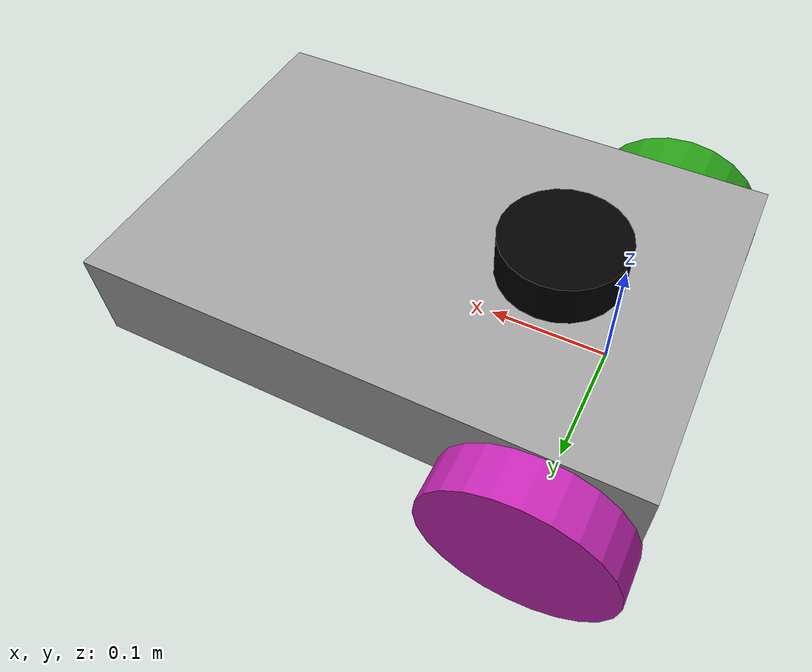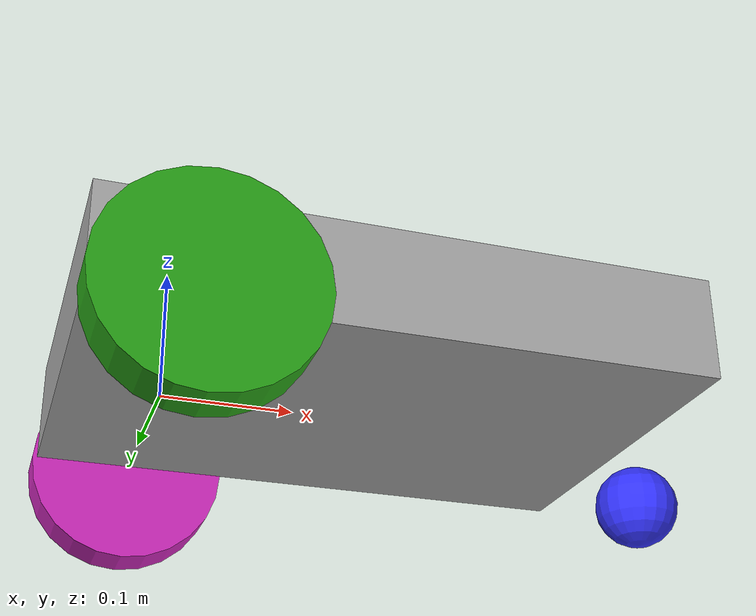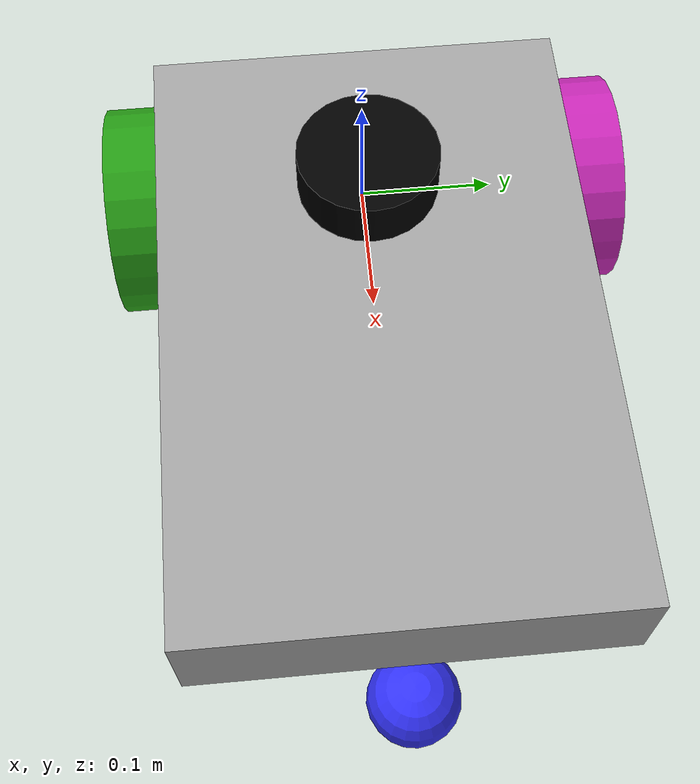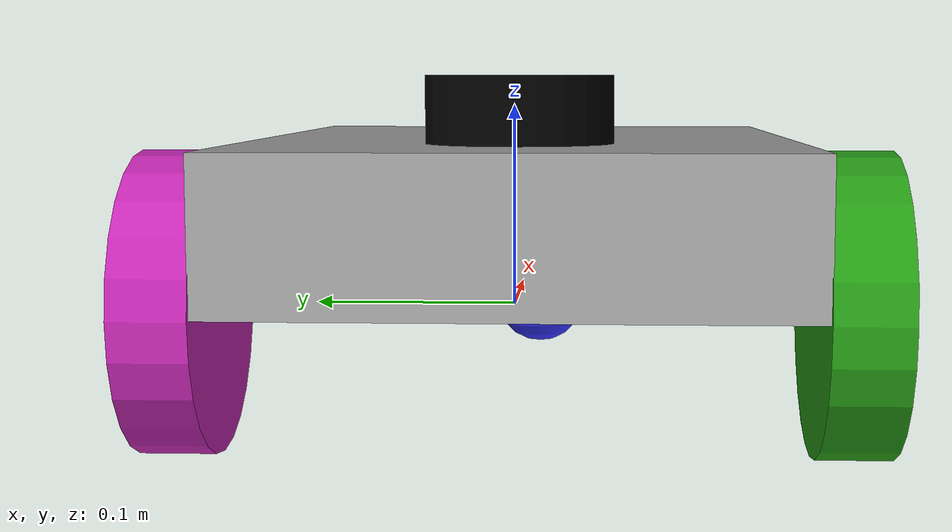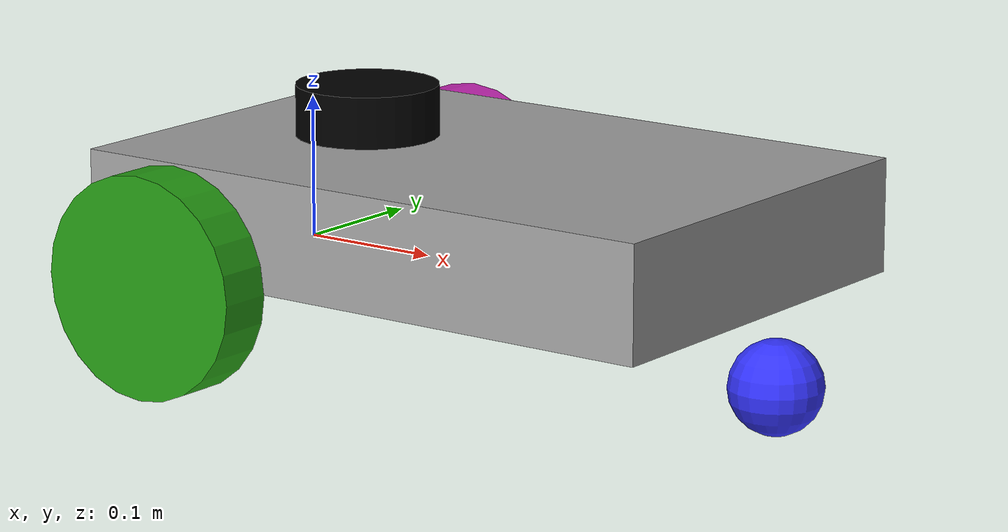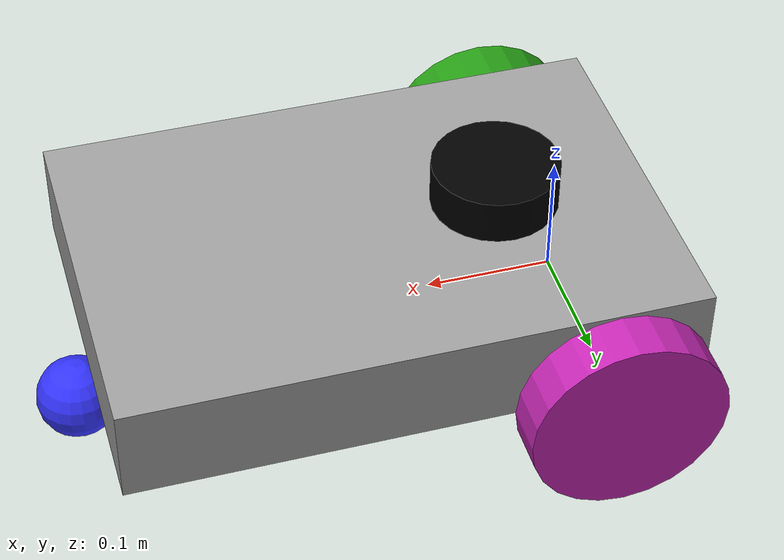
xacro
<?xml version="1.0"?>
<robot xmlns:xacro="http://www.ros.org/wiki/xacro"  name="robot">

    <xacro:arg name="use_ros2_control" default="true"/>
    <xacro:arg name="sim_mode" default="false"/>

    <xacro:include filename="robot_core.xacro" />
    <xacro:include filename="lidar.xacro" />

    <xacro:if value="$(arg use_ros2_control)">
        <xacro:include filename="ros2_control.xacro" />
    </xacro:if>
    <xacro:unless value="$(arg use_ros2_control)">
        <xacro:include filename="gazebo_control.xacro" />
    </xacro:unless>

</robot>

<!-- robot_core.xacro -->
<robot xmlns:xacro="http://www.ros.org/wiki/xacro" >

    <xacro:include filename="inertial_macros.xacro"/>

    <xacro:property name="chassis_length" value="0.448"/>
    <xacro:property name="chassis_width" value="0.3"/>
    <xacro:property name="chassis_height" value="0.07913"/>
    <xacro:property name="chassis_mass" value="6.0"/>
    <xacro:property name="wheel_radius" value="0.0775"/>
    <xacro:property name="wheel_thickness" value="0.03886"/>
    <xacro:property name="wheel_mass" value="0.5"/>
    <xacro:property name="wheel_offset_x" value="0.07388"/>
    <xacro:property name="wheel_offset_y" value="0.169"/>
    <xacro:property name="wheel_offset_z" value="0.0"/>
    <xacro:property name="caster_wheel_radius" value="0.032225"/>
    <xacro:property name="caster_wheel_mass" value="0.2"/>
    <xacro:property name="caster_wheel_offset_x" value="0.45862"/>
    <xacro:property name="caster_wheel_offset_z" value="${wheel_offset_z - wheel_radius + caster_wheel_radius}"/>

    <material name="white">
        <color rgba="1 1 1 1" />
    </material>

    <material name="orange">
        <color rgba="1 0.3 0.1 1"/>
    </material>

    <material name="blue">
        <color rgba="0.2 0.2 1 1"/>
    </material>

    <material name="black">
        <color rgba="0 0 0 1"/>
    </material>

    <material name="red">
        <color rgba="1 0 0 1"/>
    </material>

    <material name="grey">
        <color rgba="0.631 0.631 0.631 1"/>
    </material>

    <material name="purple">
        <color rgba="0.78 0.153 0.71 1"/>
    </material>

    <material name="green">
        <color rgba="0.149 0.612 0.082 1"/>
    </material>

    <!-- Base Link -->
    <link name="base_link">
    </link>

    <!-- Base Footprint -->
    <joint name="base_footprint_joint" type="fixed">
        <parent link="base_link"/>
        <child link="base_footprint"/>
        <origin xyz="0 0 0" rpy="0 0 0"/>
    </joint>

    <link name="base_footprint">
    </link>

    <!-- Chassis -->
    <joint name="chassis_joint" type="fixed">
        <parent link="base_link"/>
        <child link="chassis"/>
        <origin xyz="${-wheel_offset_x} 0 ${-wheel_offset_z}"/>
    </joint>

    <link name="chassis">
        <visual>
            <origin xyz="${chassis_length/2} 0 ${chassis_height/2}"/>
            <geometry>
                <box size="${chassis_length} ${chassis_width} ${chassis_height}"/>
            </geometry>
            <material name="grey"/>
        </visual>
        <collision>
            <origin xyz="${chassis_length/2} 0 ${chassis_height/2}"/>
            <geometry>
                <box size="${chassis_length} ${chassis_width} ${chassis_height}"/>
            </geometry>
        </collision>
        <xacro:inertial_box mass="0.5" x="${chassis_length}" y="${chassis_width}" z="${chassis_height}">
            <origin xyz="${chassis_length/2} 0 ${chassis_height/2}" rpy="0 0 0"/>
        </xacro:inertial_box>
    </link>

    <gazebo reference="chassis">
        <material>Gazebo/Grey</material>
    </gazebo>

    <!-- Left Wheel -->
    <joint name="left_wheel_joint" type="continuous">
        <parent link="base_link"/>
        <child link="left_wheel"/>
        <origin xyz="0 ${wheel_offset_y} 0" rpy="-${pi/2} 0 0" />
        <axis xyz="0 0 1"/>
    </joint>

    <link name="left_wheel">
        <visual>
            <geometry>
                <cylinder radius="${wheel_radius}" length="${wheel_thickness}"/>
            </geometry>
            <material name="purple"/>
        </visual>
        <collision>
            <geometry>
                <sphere radius="${wheel_radius}"/>
            </geometry>
        </collision>
        <xacro:inertial_cylinder mass="${wheel_mass}" length="${wheel_thickness}" radius="${wheel_radius}">
            <origin xyz="0 0 0" rpy="0 0 0"/>
        </xacro:inertial_cylinder>
    </link>

    <gazebo reference="left_wheel">
        <material>Gazebo/Purple</material>
    </gazebo>

    <!-- Right Wheel -->
    <joint name="right_wheel_joint" type="continuous">
        <parent link="base_link"/>
        <child link="right_wheel"/>
        <origin xyz="0 ${-wheel_offset_y} 0" rpy="${pi/2} 0 0" />
        <axis xyz="0 0 -1"/>
    </joint>

    <link name="right_wheel">
        <visual>
            <geometry>
                <cylinder radius="${wheel_radius}" length="${wheel_thickness}"/>
            </geometry>
            <material name="green"/>
        </visual>
        <collision>
            <geometry>
                <sphere radius="${wheel_radius}"/>
            </geometry>
        </collision>
        <xacro:inertial_cylinder mass="${wheel_mass}" length="${wheel_thickness}" radius="${wheel_radius}">
            <origin xyz="0 0 0" rpy="0 0 0"/>
        </xacro:inertial_cylinder>
    </link>

    <gazebo reference="right_wheel">
        <material>Gazebo/Green</material>
    </gazebo>

    <!-- Caster Wheel -->
    <joint name="caster_wheel_joint" type="fixed">
        <parent link="chassis"/>
        <child link="caster_wheel"/>
        <origin xyz="${caster_wheel_offset_x} 0 ${caster_wheel_offset_z}"/>
    </joint>

    <link name="caster_wheel">
        <visual>
            <geometry>
                <sphere radius="${caster_wheel_radius}"/>
            </geometry>
            <material name="blue"/>
        </visual>
        <collision>
            <geometry>
                <sphere radius="${caster_wheel_radius}"/>
            </geometry>
        </collision>
        <xacro:inertial_sphere mass="${caster_wheel_mass}" radius="${caster_wheel_radius}">
            <origin xyz="0 0 0" rpy="0 0 0"/>
        </xacro:inertial_sphere>
    </link>

    <gazebo reference="caster_wheel">
        <material>Gazebo/Blue</material>
        <mu1 value="0.001"/>
        <mu2 value="0.001"/>
    </gazebo>

</robot>

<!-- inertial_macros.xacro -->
<robot xmlns:xacro="http://www.ros.org/wiki/xacro" >

    <!-- Inertial Sphere Macros -->
    <xacro:macro name="inertial_sphere" params="mass radius *origin">
        <inertial>
            <xacro:insert_block name="origin"/>
            <mass value="${mass}" />
            <inertia ixx="${(2/5) * mass * (radius*radius)}" ixy="0.0" ixz="0.0"
                    iyy="${(2/5) * mass * (radius*radius)}" iyz="0.0"
                    izz="${(2/5) * mass * (radius*radius)}" />
        </inertial>
    </xacro:macro>

    <!-- Inertial Box Macros -->
    <xacro:macro name="inertial_box" params="mass x y z *origin">
        <inertial>
            <xacro:insert_block name="origin"/>
            <mass value="${mass}" />
            <inertia ixx="${(1/12) * mass * (y*y+z*z)}" ixy="0.0" ixz="0.0"
                    iyy="${(1/12) * mass * (x*x+z*z)}" iyz="0.0"
                    izz="${(1/12) * mass * (x*x+y*y)}" />
        </inertial>
    </xacro:macro>

    <!-- Inertial Cylinder Macros -->
    <xacro:macro name="inertial_cylinder" params="mass length radius *origin">
        <inertial>
            <xacro:insert_block name="origin"/>
            <mass value="${mass}" />
            <inertia ixx="${(1/12) * mass * (3*radius*radius + length*length)}" ixy="0.0" ixz="0.0"
                    iyy="${(1/12) * mass * (3*radius*radius + length*length)}" iyz="0.0"
                    izz="${(1/2) * mass * (radius*radius)}" />
        </inertial>
    </xacro:macro>

</robot>

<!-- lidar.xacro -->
<robot xmlns:xacro="http://www.ros.org/wiki/xacro" >

    <!-- Lidar -->
    <joint name="laser_joint" type="fixed">
        <parent link="chassis"/>
        <child link="laser_frame"/>
        <origin xyz="0.122 0 0.09" rpy="0 0 0"/>
    </joint>

    <link name="laser_frame">
        <visual>
            <geometry>
                <cylinder radius="0.05" length="0.05"/>
            </geometry>
            <material name="black"/>
        </visual>
        <collision>
            <geometry>
                <cylinder radius="0.05" length="0.05"/>
            </geometry>
        </collision>
        <xacro:inertial_cylinder mass="0.1" length="0.05" radius="0.05">
            <origin xyz="0 0 0" rpy="0 0 0"/>
        </xacro:inertial_cylinder>
    </link>

    <!-- 2D Lidar Gazebo Sensor Plugin  -->
    <gazebo reference="laser_frame">
        <material>Gazebo/Black</material>

        <sensor name="laser" type="ray">
            <pose> 0 0 0 0 0 0 </pose>
            <visualize>true</visualize>
            <update_rate>10</update_rate>
            <ray>
                <scan>
                    <horizontal>
                        <samples>360</samples>
                        <min_angle>-3.14</min_angle>
                        <max_angle>3.14</max_angle>
                    </horizontal>
                </scan>
                <range>
                    <min>0.3</min>
                    <max>12</max>
                </range>
            </ray>
            <plugin name="laser_controller" filename="libgazebo_ros_ray_sensor.so">
                <ros>
                    <argument>~/out:=scan</argument>
                </ros>
                <output_type>sensor_msgs/LaserScan</output_type>
                <frame_name>laser_frame</frame_name>
            </plugin>
        </sensor>
    </gazebo>

</robot>
